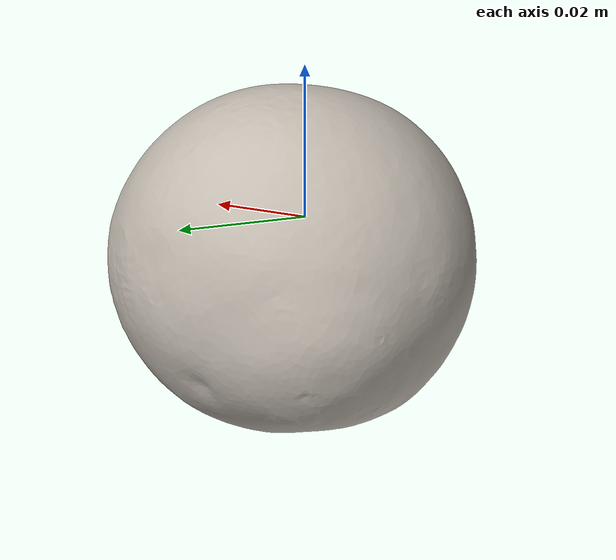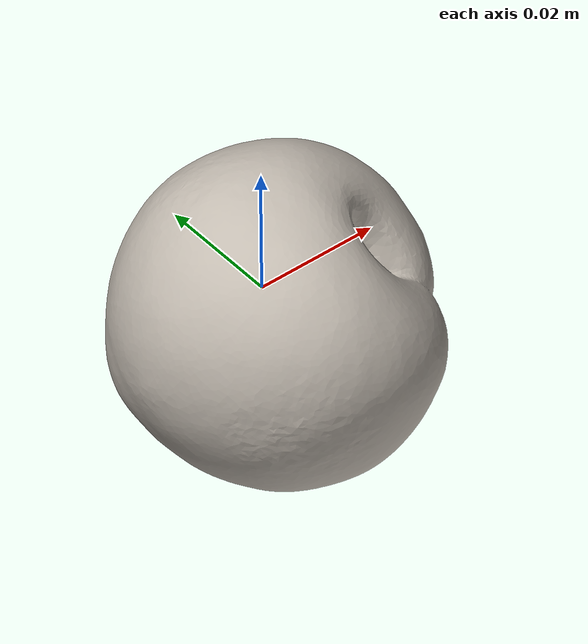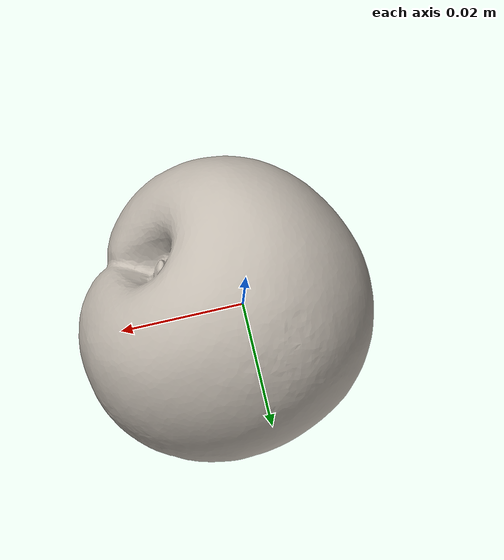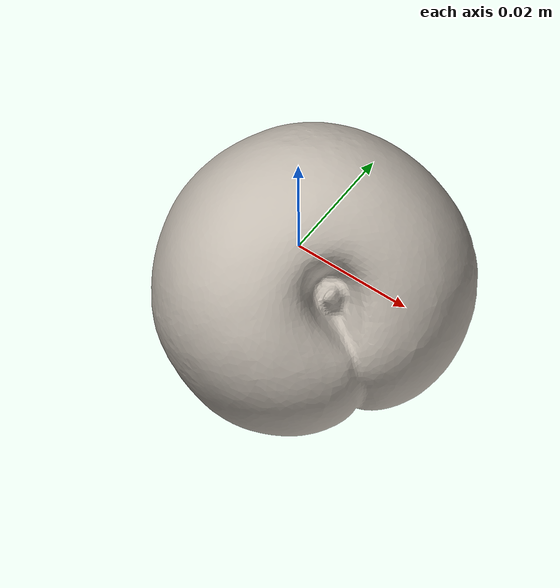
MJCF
<mujoco model="bread">
  <asset>
    <mesh file="nontextured.stl" name="obj_mesh" scale="0.8 0.8 0.8"/>
    <texture file="../../../../../textures/bread.png" type="2d" name="tex-bread" />
    <material name="bread" reflectance="0.7" texrepeat="15 15" texture="tex-bread" texuniform="true"/>
  </asset>
  <worldbody>
    <body>
      <body name="collision">
        <geom pos="0.014270499999999998 -0.005633000000000001 -0.0291075" mesh="obj_mesh" type="mesh" solimp="0.998 0.998 0.001" solref="0.001 1" density="50" friction="0.95 0.3 0.1"  material="bread" group="1" condim="4"/>
      </body>
      <body name="visual">
        <geom pos="0.014270499999999998 -0.005633000000000001 -0.0291075" mesh="obj_mesh" type="mesh" material="bread"  conaffinity="0" contype="0"  group="0" mass="0.0001"/>
        <geom pos="0.014270499999999998 -0.005633000000000001 -0.0291075" mesh="obj_mesh" type="mesh" material="bread"  conaffinity="0" contype="0"  group="1" mass="0.0001"/>
      </body>
      <site rgba="0 0 0 0" size="0.005" pos="0 0 -0.0293225" name="bottom_site"/>
      <site rgba="0 0 0 0" size="0.005" pos="0 0 0.0293225" name="top_site"/>
      <site rgba="0 0 0 0" size="0.005" pos="0.0310615 0.031316000000000004 0.0293225" name="horizontal_radius_site"/>
    </body>
  </worldbody>
</mujoco>
